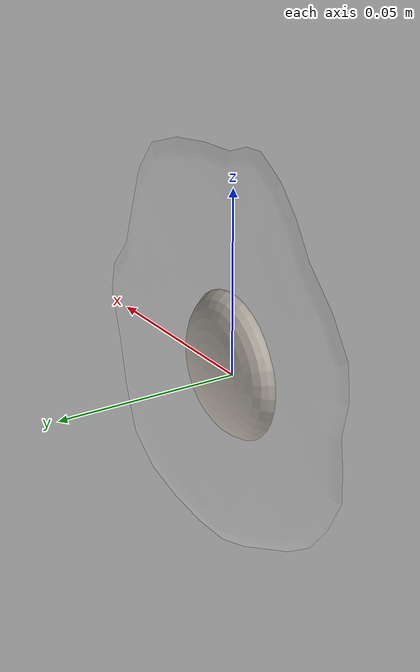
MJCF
<mujoco model="Egg_Cracked_14">
  <compiler autolimits="true" boundmass="0.01" angle="radian"/>
  <default>
    <default class="/">
      <default class="__VISUAL_MJT__">
        <geom contype="0" conaffinity="0" group="0"/>
      </default>
      <default class="__STRUCTURAL_MJT__">
        <geom contype="8" conaffinity="15" group="4" friction="0.90000000000000002 0.90000000000000002 0.001" solref="0.025000000000000001 1" solimp="0.998 0.998 0.001"/>
      </default>
      <default class="__DYNAMIC_MJT__">
        <geom contype="1" conaffinity="15" group="4" friction="0.90000000000000002 0.90000000000000002 0.001" solref="0.025000000000000001 1" solimp="0.998 0.998 0.001"/>
      </default>
    </default>
  </default>
  <asset>
    <texture name="Fried_Egg_White_Uncooked_Mat" type="2d" file="Fried_Egg_AlbedoTransparency.png"/>
    <material name="material_Fried_Egg_White_Uncooked_Mat" class="/" texture="Fried_Egg_White_Uncooked_Mat" specular="0.5" shininess="0.5" rgba="1 1 1 0.5"/>
    <texture name="Fried_Egg_Yolk_Mat" type="2d" file="Fried_Egg_AlbedoTransparency.png"/>
    <material name="material_Fried_Egg_Yolk_Mat" class="/" texture="Fried_Egg_Yolk_Mat" specular="0.5" shininess="0.5" rgba="1 1 1 1"/>
    <mesh name="Egg_Cracked_14_fried_egg_13_0" class="/" file="Egg_Cracked_14_fried_egg_13/Egg_Cracked_14_fried_egg_13_0.obj" scale="1 1 1"/>
    <mesh name="Egg_Cracked_14_fried_egg_13_1" class="/" file="Egg_Cracked_14_fried_egg_13/Egg_Cracked_14_fried_egg_13_1.obj" scale="1 1 1"/>
  </asset>
  <worldbody>
    <body name="Egg_Cracked_14">
      <joint name="Egg_Cracked_14_free" class="/" type="free" pos="0 0 0" axis="0 0 1" stiffness="0" range="0 0" armature="0" damping="0.10000000000000001" frictionloss="0"/>
      <body name="Egg_Cracked_14_fried_egg_13" pos="0.0095499999999999995 -0.01023 -0.00329" quat="1 0 0 0">
        <geom name="Egg_Cracked_14_fried_egg_13_0" class="__VISUAL_MJT__" type="mesh" material="material_Fried_Egg_White_Uncooked_Mat" shellinertia="false" mesh="Egg_Cracked_14_fried_egg_13_0"/>
        <geom name="Egg_Cracked_14_fried_egg_13_1" class="__VISUAL_MJT__" type="mesh" material="material_Fried_Egg_Yolk_Mat" shellinertia="false" mesh="Egg_Cracked_14_fried_egg_13_1"/>
        <geom name="Egg_Cracked_14_PrimitiveCollider_0" class="__DYNAMIC_MJT__" type="box" size="0.055742904543876648 0.010231256484985352 0.056955248117446899" rgba="0 1 0 1" pos="0.0095469206571578979 0.010231256484985352 0.0032888352870941162" quat="1 0 0 0"/>
      </body>
    </body>
  </worldbody>
</mujoco>
